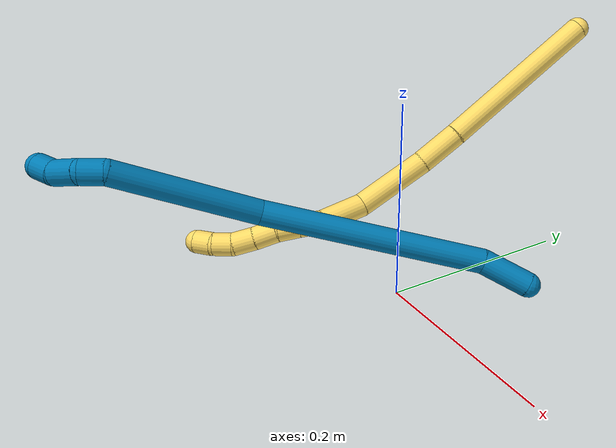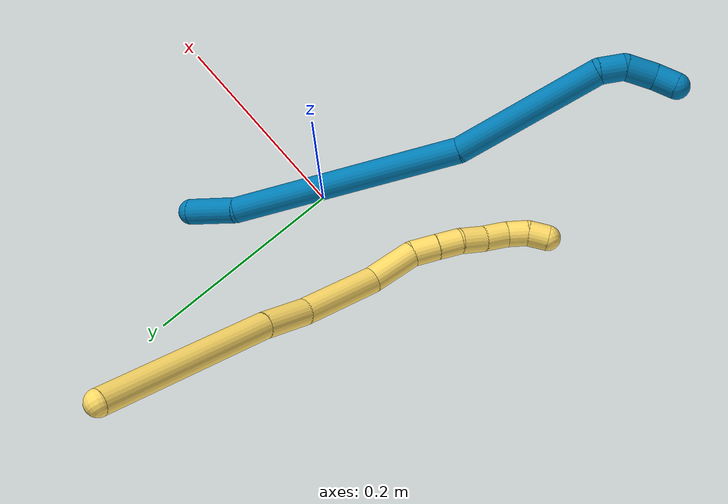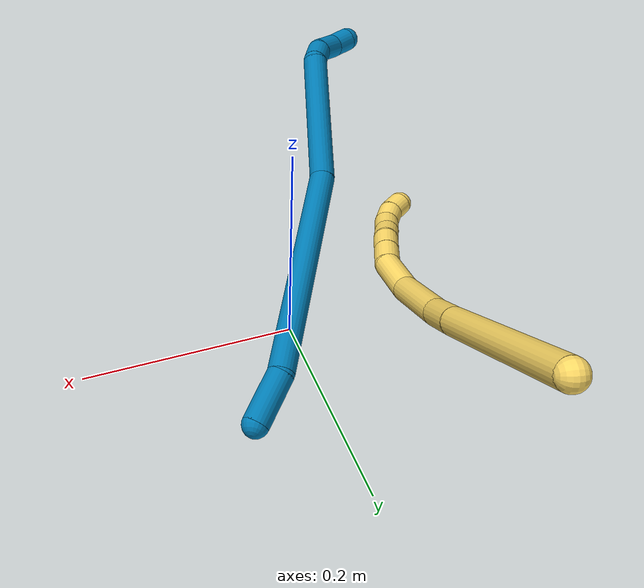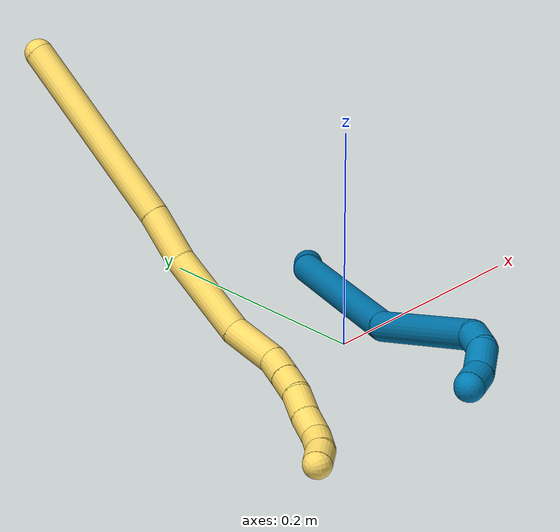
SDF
<sdf version="1.7">
 <world name="default">
  <model name="bin">
   <static>1</static>
   <link name="bottom">
    <collision name="collision-bottom">
     <pose>0 0 -0.01 0 -0 0</pose>
     <geometry><box><size>0.8 0.6 0.02</size></box></geometry>
     <surface>
      <friction><ode><mu>100</mu><mu2>100</mu2></ode></friction>
      <contact><collide_bitmask>65535</collide_bitmask></contact>
     </surface>
    </collision>
   </link>
   <link name="west_wall">
    <collision name="collision-west_wall">
     <pose>-0.41 0 0.1 0 -0 0</pose>
     <geometry><box><size>0.02 0.6 0.2</size></box></geometry>
     <surface>
      <friction><ode><mu>100</mu><mu2>100</mu2></ode></friction>
      <contact><collide_bitmask>65535</collide_bitmask></contact>
     </surface>
    </collision>
   </link>
   <link name="east_wall">
    <collision name="collision-east_wall">
     <pose>0.41 0 0.1 0 -0 0</pose>
     <geometry><box><size>0.02 0.6 0.2</size></box></geometry>
     <surface>
      <friction><ode><mu>100</mu><mu2>100</mu2></ode></friction>
      <contact><collide_bitmask>65535</collide_bitmask></contact>
     </surface>
    </collision>
   </link>
   <link name="south_wall">
    <collision name="collision-south_wall">
     <pose>0 -0.31 0.1 0 -0 0</pose>
     <geometry><box><size>0.8 0.02 0.2</size></box></geometry>
     <surface>
      <friction><ode><mu>100</mu><mu2>100</mu2></ode></friction>
      <contact><collide_bitmask>65535</collide_bitmask></contact>
     </surface>
    </collision>
   </link>
   <link name="north_wall">
    <collision name="collision-north_wall">
     <pose>0 0.31 0.1 0 -0 0</pose>
     <geometry><box><size>0.8 0.02 0.2</size></box></geometry>
     <surface>
      <friction><ode><mu>100</mu><mu2>100</mu2></ode></friction>
      <contact><collide_bitmask>65535</collide_bitmask></contact>
     </surface>
    </collision>
   </link>
  </model>
  <model name="5">
   <static>0</static>
   <link name="5">
    <collision name="collision-cylinder-e_1_1_4">
     <pose>0.01465 -0.089816 0.007468 1.48784 0.16114 0.148347</pose>
     <geometry><cylinder><radius>0.0125</radius><length>0.182617</length></cylinder></geometry>
     <surface>
      <friction><ode><mu>1.16</mu><mu2>1.16</mu2><slip1>0</slip1><slip2>0</slip2></ode></friction>
      <contact><ode><kp>1e+06</kp><kd>1</kd><max_vel>0</max_vel><min_depth>0.001</min_depth></ode></contact>
     </surface>
    </collision>
    <visual name="visual-cylinder-e_1_1_4">
     <pose>0.01465 -0.089816 0.007468 1.48784 0.16114 0.148347</pose>
     <geometry><cylinder><radius>0.0125</radius><length>0.182617</length></cylinder></geometry>
     <material><ambient>1 0.858824 0.4 1</ambient></material>
    </visual>
    <collision name="collision-cylinder-e_2_4_5">
     <pose>0.033686 -0.203258 0.014895 1.57252 0.18354 0.183854</pose>
     <geometry><cylinder><radius>0.0125</radius><length>0.048061</length></cylinder></geometry>
     <surface>
      <friction><ode><mu>1.16</mu><mu2>1.16</mu2><slip1>0</slip1><slip2>0</slip2></ode></friction>
      <contact><ode><kp>1e+06</kp><kd>1</kd><max_vel>0</max_vel><min_depth>0.001</min_depth></ode></contact>
     </surface>
    </collision>
    <visual name="visual-cylinder-e_2_4_5">
     <pose>0.033686 -0.203258 0.014895 1.57252 0.18354 0.183854</pose>
     <geometry><cylinder><radius>0.0125</radius><length>0.048061</length></cylinder></geometry>
     <material><ambient>1 0.858824 0.4 1</ambient></material>
    </visual>
    <collision name="collision-cylinder-e_3_5_6">
     <pose>0.040466 -0.267543 0.017334 1.50989 0.058729 0.055259</pose>
     <geometry><cylinder><radius>0.0125</radius><length>0.081607</length></cylinder></geometry>
     <surface>
      <friction><ode><mu>1.16</mu><mu2>1.16</mu2><slip1>0</slip1><slip2>0</slip2></ode></friction>
      <contact><ode><kp>1e+06</kp><kd>1</kd><max_vel>0</max_vel><min_depth>0.001</min_depth></ode></contact>
     </surface>
    </collision>
    <visual name="visual-cylinder-e_3_5_6">
     <pose>0.040466 -0.267543 0.017334 1.50989 0.058729 0.055259</pose>
     <geometry><cylinder><radius>0.0125</radius><length>0.081607</length></cylinder></geometry>
     <material><ambient>1 0.858824 0.4 1</ambient></material>
    </visual>
    <collision name="collision-cylinder-e_4_6_7">
     <pose>0.037486 -0.331367 0.022909 1.43796 -0.226055 -0.198055</pose>
     <geometry><cylinder><radius>0.0125</radius><length>0.047964</length></cylinder></geometry>
     <surface>
      <friction><ode><mu>1.16</mu><mu2>1.16</mu2><slip1>0</slip1><slip2>0</slip2></ode></friction>
      <contact><ode><kp>1e+06</kp><kd>1</kd><max_vel>0</max_vel><min_depth>0.001</min_depth></ode></contact>
     </surface>
    </collision>
    <visual name="visual-cylinder-e_4_6_7">
     <pose>0.037486 -0.331367 0.022909 1.43796 -0.226055 -0.198055</pose>
     <geometry><cylinder><radius>0.0125</radius><length>0.047964</length></cylinder></geometry>
     <material><ambient>1 0.858824 0.4 1</ambient></material>
    </visual>
    <collision name="collision-cylinder-e_5_7_8">
     <pose>0.028463 -0.366654 0.023465 1.77727 -0.286437 -0.351417</pose>
     <geometry><cylinder><radius>0.0125</radius><length>0.02582</length></cylinder></geometry>
     <surface>
      <friction><ode><mu>1.16</mu><mu2>1.16</mu2><slip1>0</slip1><slip2>0</slip2></ode></friction>
      <contact><ode><kp>1e+06</kp><kd>1</kd><max_vel>0</max_vel><min_depth>0.001</min_depth></ode></contact>
     </surface>
    </collision>
    <visual name="visual-cylinder-e_5_7_8">
     <pose>0.028463 -0.366654 0.023465 1.77727 -0.286437 -0.351417</pose>
     <geometry><cylinder><radius>0.0125</radius><length>0.02582</length></cylinder></geometry>
     <material><ambient>1 0.858824 0.4 1</ambient></material>
    </visual>
    <collision name="collision-cylinder-e_6_8_9">
     <pose>0.021839 -0.389876 0.018534 1.7831 -0.256353 -0.316576</pose>
     <geometry><cylinder><radius>0.0125</radius><length>0.02348</length></cylinder></geometry>
     <surface>
      <friction><ode><mu>1.16</mu><mu2>1.16</mu2><slip1>0</slip1><slip2>0</slip2></ode></friction>
      <contact><ode><kp>1e+06</kp><kd>1</kd><max_vel>0</max_vel><min_depth>0.001</min_depth></ode></contact>
     </surface>
    </collision>
    <visual name="visual-cylinder-e_6_8_9">
     <pose>0.021839 -0.389876 0.018534 1.7831 -0.256353 -0.316576</pose>
     <geometry><cylinder><radius>0.0125</radius><length>0.02348</length></cylinder></geometry>
     <material><ambient>1 0.858824 0.4 1</ambient></material>
    </visual>
    <collision name="collision-cylinder-e_7_9_10">
     <pose>0.018237 -0.413039 0.01264 1.85327 -0.049775 -0.066266</pose>
     <geometry><cylinder><radius>0.0125</radius><length>0.02515</length></cylinder></geometry>
     <surface>
      <friction><ode><mu>1.16</mu><mu2>1.16</mu2><slip1>0</slip1><slip2>0</slip2></ode></friction>
      <contact><ode><kp>1e+06</kp><kd>1</kd><max_vel>0</max_vel><min_depth>0.001</min_depth></ode></contact>
     </surface>
    </collision>
    <visual name="visual-cylinder-e_7_9_10">
     <pose>0.018237 -0.413039 0.01264 1.85327 -0.049775 -0.066266</pose>
     <geometry><cylinder><radius>0.0125</radius><length>0.02515</length></cylinder></geometry>
     <material><ambient>1 0.858824 0.4 1</ambient></material>
    </visual>
    <collision name="collision-cylinder-e_8_10_11">
     <pose>0.015644 -0.436715 0.006358 1.80586 -0.163249 -0.206683</pose>
     <geometry><cylinder><radius>0.0125</radius><length>0.024209</length></cylinder></geometry>
     <surface>
      <friction><ode><mu>1.16</mu><mu2>1.16</mu2><slip1>0</slip1><slip2>0</slip2></ode></friction>
      <contact><ode><kp>1e+06</kp><kd>1</kd><max_vel>0</max_vel><min_depth>0.001</min_depth></ode></contact>
     </surface>
    </collision>
    <visual name="visual-cylinder-e_8_10_11">
     <pose>0.015644 -0.436715 0.006358 1.80586 -0.163249 -0.206683</pose>
     <geometry><cylinder><radius>0.0125</radius><length>0.024209</length></cylinder></geometry>
     <material><ambient>1 0.858824 0.4 1</ambient></material>
    </visual>
    <collision name="collision-cylinder-e_9_11_12">
     <pose>0.010069 -0.457112 -0.000892 2.04144 -0.350998 -0.562986</pose>
     <geometry><cylinder><radius>0.0125</radius><length>0.020986</length></cylinder></geometry>
     <surface>
      <friction><ode><mu>1.16</mu><mu2>1.16</mu2><slip1>0</slip1><slip2>0</slip2></ode></friction>
      <contact><ode><kp>1e+06</kp><kd>1</kd><max_vel>0</max_vel><min_depth>0.001</min_depth></ode></contact>
     </surface>
    </collision>
    <visual name="visual-cylinder-e_9_11_12">
     <pose>0.010069 -0.457112 -0.000892 2.04144 -0.350998 -0.562986</pose>
     <geometry><cylinder><radius>0.0125</radius><length>0.020986</length></cylinder></geometry>
     <material><ambient>1 0.858824 0.4 1</ambient></material>
    </visual>
    <collision name="collision-cylinder-e_10_12_2">
     <pose>0.003822 -0.472792 -0.012181 2.35056 -0.265579 -0.619274</pose>
     <geometry><cylinder><radius>0.0125</radius><length>0.020106</length></cylinder></geometry>
     <surface>
      <friction><ode><mu>1.16</mu><mu2>1.16</mu2><slip1>0</slip1><slip2>0</slip2></ode></friction>
      <contact><ode><kp>1e+06</kp><kd>1</kd><max_vel>0</max_vel><min_depth>0.001</min_depth></ode></contact>
     </surface>
    </collision>
    <visual name="visual-cylinder-e_10_12_2">
     <pose>0.003822 -0.472792 -0.012181 2.35056 -0.265579 -0.619274</pose>
     <geometry><cylinder><radius>0.0125</radius><length>0.020106</length></cylinder></geometry>
     <material><ambient>1 0.858824 0.4 1</ambient></material>
    </visual>
    <collision name="collision-sphere-2">
     <pose>0.001184 -0.47969 -0.019001 0 -0 0</pose>
     <geometry><sphere><radius>0.0125</radius></sphere></geometry>
     <surface>
      <friction><ode><mu>1.16</mu><mu2>1.16</mu2><slip1>0</slip1><slip2>0</slip2></ode></friction>
      <contact><ode><kp>1e+06</kp><kd>1</kd><max_vel>0</max_vel><min_depth>0.001</min_depth></ode></contact>
     </surface>
    </collision>
    <visual name="visual-sphere-2">
     <pose>0.001184 -0.47969 -0.019001 0 -0 0</pose>
     <geometry><sphere><radius>0.0125</radius></sphere></geometry>
     <material><ambient>1 0.858824 0.4 1</ambient></material>
    </visual>
    <collision name="collision-sphere-12">
     <pose>0.006461 -0.465894 -0.00536 0 -0 0</pose>
     <geometry><sphere><radius>0.0125</radius></sphere></geometry>
     <surface>
      <friction><ode><mu>1.16</mu><mu2>1.16</mu2><slip1>0</slip1><slip2>0</slip2></ode></friction>
      <contact><ode><kp>1e+06</kp><kd>1</kd><max_vel>0</max_vel><min_depth>0.001</min_depth></ode></contact>
     </surface>
    </collision>
    <visual name="visual-sphere-12">
     <pose>0.006461 -0.465894 -0.00536 0 -0 0</pose>
     <geometry><sphere><radius>0.0125</radius></sphere></geometry>
     <material><ambient>1 0.858824 0.4 1</ambient></material>
    </visual>
    <collision name="collision-sphere-11">
     <pose>0.013677 -0.44833 0.003576 0 -0 0</pose>
     <geometry><sphere><radius>0.0125</radius></sphere></geometry>
     <surface>
      <friction><ode><mu>1.16</mu><mu2>1.16</mu2><slip1>0</slip1><slip2>0</slip2></ode></friction>
      <contact><ode><kp>1e+06</kp><kd>1</kd><max_vel>0</max_vel><min_depth>0.001</min_depth></ode></contact>
     </surface>
    </collision>
    <visual name="visual-sphere-11">
     <pose>0.013677 -0.44833 0.003576 0 -0 0</pose>
     <geometry><sphere><radius>0.0125</radius></sphere></geometry>
     <material><ambient>1 0.858824 0.4 1</ambient></material>
    </visual>
    <collision name="collision-sphere-10">
     <pose>0.017611 -0.425101 0.009139 0 -0 0</pose>
     <geometry><sphere><radius>0.0125</radius></sphere></geometry>
     <surface>
      <friction><ode><mu>1.16</mu><mu2>1.16</mu2><slip1>0</slip1><slip2>0</slip2></ode></friction>
      <contact><ode><kp>1e+06</kp><kd>1</kd><max_vel>0</max_vel><min_depth>0.001</min_depth></ode></contact>
     </surface>
    </collision>
    <visual name="visual-sphere-10">
     <pose>0.017611 -0.425101 0.009139 0 -0 0</pose>
     <geometry><sphere><radius>0.0125</radius></sphere></geometry>
     <material><ambient>1 0.858824 0.4 1</ambient></material>
    </visual>
    <collision name="collision-sphere-9">
     <pose>0.018862 -0.400977 0.016141 0 -0 0</pose>
     <geometry><sphere><radius>0.0125</radius></sphere></geometry>
     <surface>
      <friction><ode><mu>1.16</mu><mu2>1.16</mu2><slip1>0</slip1><slip2>0</slip2></ode></friction>
      <contact><ode><kp>1e+06</kp><kd>1</kd><max_vel>0</max_vel><min_depth>0.001</min_depth></ode></contact>
     </surface>
    </collision>
    <visual name="visual-sphere-9">
     <pose>0.018862 -0.400977 0.016141 0 -0 0</pose>
     <geometry><sphere><radius>0.0125</radius></sphere></geometry>
     <material><ambient>1 0.858824 0.4 1</ambient></material>
    </visual>
    <collision name="collision-sphere-4">
     <pose>0.0293 -0.179631 0.014936 0 -0 0</pose>
     <geometry><sphere><radius>0.0125</radius></sphere></geometry>
     <surface>
      <friction><ode><mu>1.16</mu><mu2>1.16</mu2><slip1>0</slip1><slip2>0</slip2></ode></friction>
      <contact><ode><kp>1e+06</kp><kd>1</kd><max_vel>0</max_vel><min_depth>0.001</min_depth></ode></contact>
     </surface>
    </collision>
    <visual name="visual-sphere-4">
     <pose>0.0293 -0.179631 0.014936 0 -0 0</pose>
     <geometry><sphere><radius>0.0125</radius></sphere></geometry>
     <material><ambient>1 0.858824 0.4 1</ambient></material>
    </visual>
    <collision name="collision-sphere-1">
     <geometry><sphere><radius>0.0125</radius></sphere></geometry>
     <surface>
      <friction><ode><mu>1.16</mu><mu2>1.16</mu2><slip1>0</slip1><slip2>0</slip2></ode></friction>
      <contact><ode><kp>1e+06</kp><kd>1</kd><max_vel>0</max_vel><min_depth>0.001</min_depth></ode></contact>
     </surface>
    </collision>
    <visual name="visual-sphere-1">
     <geometry><sphere><radius>0.0125</radius></sphere></geometry>
     <material><ambient>1 0.858824 0.4 1</ambient></material>
    </visual>
    <collision name="collision-sphere-8">
     <pose>0.024816 -0.378775 0.020926 0 -0 0</pose>
     <geometry><sphere><radius>0.0125</radius></sphere></geometry>
     <surface>
      <friction><ode><mu>1.16</mu><mu2>1.16</mu2><slip1>0</slip1><slip2>0</slip2></ode></friction>
      <contact><ode><kp>1e+06</kp><kd>1</kd><max_vel>0</max_vel><min_depth>0.001</min_depth></ode></contact>
     </surface>
    </collision>
    <visual name="visual-sphere-8">
     <pose>0.024816 -0.378775 0.020926 0 -0 0</pose>
     <geometry><sphere><radius>0.0125</radius></sphere></geometry>
     <material><ambient>1 0.858824 0.4 1</ambient></material>
    </visual>
    <collision name="collision-sphere-5">
     <pose>0.038071 -0.226885 0.014855 0 -0 0</pose>
     <geometry><sphere><radius>0.0125</radius></sphere></geometry>
     <surface>
      <friction><ode><mu>1.16</mu><mu2>1.16</mu2><slip1>0</slip1><slip2>0</slip2></ode></friction>
      <contact><ode><kp>1e+06</kp><kd>1</kd><max_vel>0</max_vel><min_depth>0.001</min_depth></ode></contact>
     </surface>
    </collision>
    <visual name="visual-sphere-5">
     <pose>0.038071 -0.226885 0.014855 0 -0 0</pose>
     <geometry><sphere><radius>0.0125</radius></sphere></geometry>
     <material><ambient>1 0.858824 0.4 1</ambient></material>
    </visual>
    <collision name="collision-sphere-6">
     <pose>0.042861 -0.3082 0.019813 0 -0 0</pose>
     <geometry><sphere><radius>0.0125</radius></sphere></geometry>
     <surface>
      <friction><ode><mu>1.16</mu><mu2>1.16</mu2><slip1>0</slip1><slip2>0</slip2></ode></friction>
      <contact><ode><kp>1e+06</kp><kd>1</kd><max_vel>0</max_vel><min_depth>0.001</min_depth></ode></contact>
     </surface>
    </collision>
    <visual name="visual-sphere-6">
     <pose>0.042861 -0.3082 0.019813 0 -0 0</pose>
     <geometry><sphere><radius>0.0125</radius></sphere></geometry>
     <material><ambient>1 0.858824 0.4 1</ambient></material>
    </visual>
    <collision name="collision-sphere-7">
     <pose>0.032111 -0.354533 0.026004 0 -0 0</pose>
     <geometry><sphere><radius>0.0125</radius></sphere></geometry>
     <surface>
      <friction><ode><mu>1.16</mu><mu2>1.16</mu2><slip1>0</slip1><slip2>0</slip2></ode></friction>
      <contact><ode><kp>1e+06</kp><kd>1</kd><max_vel>0</max_vel><min_depth>0.001</min_depth></ode></contact>
     </surface>
    </collision>
    <visual name="visual-sphere-7">
     <pose>0.032111 -0.354533 0.026004 0 -0 0</pose>
     <geometry><sphere><radius>0.0125</radius></sphere></geometry>
     <material><ambient>1 0.858824 0.4 1</ambient></material>
    </visual>
    <inertial>
     <pose>0.023536 -0.245156 0.011684 0 -0 0</pose>
     <mass>0.5</mass>
     <inertia>
      <ixx>0.000657</ixx>
      <ixy>0</ixy>
      <ixz>0</ixz>
      <iyy>9.4e-05</iyy>
      <iyz>0</iyz>
      <izz>0.000503</izz>
     </inertia>
    </inertial>
   </link>
   <pose>-0.078487 0.290875 0.206991 1.48806 1.15587 1.29722</pose>
  </model>
  <model name="9">
   <static>0</static>
   <link name="9">
    <collision name="collision-cylinder-e_1_1_4">
     <pose>0.005251 0.003628 0.024157 -0.149067 0.211746 -0.01587</pose>
     <geometry><cylinder><radius>0.0125</radius><length>0.049971</length></cylinder></geometry>
     <surface>
      <friction><ode><mu>1.16</mu><mu2>1.16</mu2><slip1>0</slip1><slip2>0</slip2></ode></friction>
      <contact><ode><kp>1e+06</kp><kd>1</kd><max_vel>0</max_vel><min_depth>0.001</min_depth></ode></contact>
     </surface>
    </collision>
    <visual name="visual-cylinder-e_1_1_4">
     <pose>0.005251 0.003628 0.024157 -0.149067 0.211746 -0.01587</pose>
     <geometry><cylinder><radius>0.0125</radius><length>0.049971</length></cylinder></geometry>
     <material><ambient>0 0.490196 0.709804 1</ambient></material>
    </visual>
    <collision name="collision-cylinder-e_2_4_5">
     <pose>0.005868 0.002665 0.160765 0.040797 -0.041154 -0.00084</pose>
     <geometry><cylinder><radius>0.0125</radius><length>0.225281</length></cylinder></geometry>
     <surface>
      <friction><ode><mu>1.16</mu><mu2>1.16</mu2><slip1>0</slip1><slip2>0</slip2></ode></friction>
      <contact><ode><kp>1e+06</kp><kd>1</kd><max_vel>0</max_vel><min_depth>0.001</min_depth></ode></contact>
     </surface>
    </collision>
    <visual name="visual-cylinder-e_2_4_5">
     <pose>0.005868 0.002665 0.160765 0.040797 -0.041154 -0.00084</pose>
     <geometry><cylinder><radius>0.0125</radius><length>0.225281</length></cylinder></geometry>
     <material><ambient>0 0.490196 0.709804 1</ambient></material>
    </visual>
    <collision name="collision-cylinder-e_3_5_6">
     <pose>0.002549 -0.023379 0.344683 0.291643 0.017629 0.002589</pose>
     <geometry><cylinder><radius>0.0125</radius><length>0.149258</length></cylinder></geometry>
     <surface>
      <friction><ode><mu>1.16</mu><mu2>1.16</mu2><slip1>0</slip1><slip2>0</slip2></ode></friction>
      <contact><ode><kp>1e+06</kp><kd>1</kd><max_vel>0</max_vel><min_depth>0.001</min_depth></ode></contact>
     </surface>
    </collision>
    <visual name="visual-cylinder-e_3_5_6">
     <pose>0.002549 -0.023379 0.344683 0.291643 0.017629 0.002589</pose>
     <geometry><cylinder><radius>0.0125</radius><length>0.149258</length></cylinder></geometry>
     <material><ambient>0 0.490196 0.709804 1</ambient></material>
    </visual>
    <collision name="collision-cylinder-e_4_6_7">
     <pose>0.000834 -0.044043 0.427839 -0.067553 -0.253122 0.008599</pose>
     <geometry><cylinder><radius>0.0125</radius><length>0.024203</length></cylinder></geometry>
     <surface>
      <friction><ode><mu>1.16</mu><mu2>1.16</mu2><slip1>0</slip1><slip2>0</slip2></ode></friction>
      <contact><ode><kp>1e+06</kp><kd>1</kd><max_vel>0</max_vel><min_depth>0.001</min_depth></ode></contact>
     </surface>
    </collision>
    <visual name="visual-cylinder-e_4_6_7">
     <pose>0.000834 -0.044043 0.427839 -0.067553 -0.253122 0.008599</pose>
     <geometry><cylinder><radius>0.0125</radius><length>0.024203</length></cylinder></geometry>
     <material><ambient>0 0.490196 0.709804 1</ambient></material>
    </visual>
    <collision name="collision-cylinder-e_5_7_8">
     <pose>-0.006208 -0.035771 0.451491 -0.558854 -0.277008 0.079953</pose>
     <geometry><cylinder><radius>0.0125</radius><length>0.029337</length></cylinder></geometry>
     <surface>
      <friction><ode><mu>1.16</mu><mu2>1.16</mu2><slip1>0</slip1><slip2>0</slip2></ode></friction>
      <contact><ode><kp>1e+06</kp><kd>1</kd><max_vel>0</max_vel><min_depth>0.001</min_depth></ode></contact>
     </surface>
    </collision>
    <visual name="visual-cylinder-e_5_7_8">
     <pose>-0.006208 -0.035771 0.451491 -0.558854 -0.277008 0.079953</pose>
     <geometry><cylinder><radius>0.0125</radius><length>0.029337</length></cylinder></geometry>
     <material><ambient>0 0.490196 0.709804 1</ambient></material>
    </visual>
    <collision name="collision-cylinder-e_6_8_2">
     <pose>-0.009718 -0.021863 0.472336 -0.626359 0.045683 -0.014796</pose>
     <geometry><cylinder><radius>0.0125</radius><length>0.021949</length></cylinder></geometry>
     <surface>
      <friction><ode><mu>1.16</mu><mu2>1.16</mu2><slip1>0</slip1><slip2>0</slip2></ode></friction>
      <contact><ode><kp>1e+06</kp><kd>1</kd><max_vel>0</max_vel><min_depth>0.001</min_depth></ode></contact>
     </surface>
    </collision>
    <visual name="visual-cylinder-e_6_8_2">
     <pose>-0.009718 -0.021863 0.472336 -0.626359 0.045683 -0.014796</pose>
     <geometry><cylinder><radius>0.0125</radius><length>0.021949</length></cylinder></geometry>
     <material><ambient>0 0.490196 0.709804 1</ambient></material>
    </visual>
    <collision name="collision-sphere-2">
     <pose>-0.009217 -0.015437 0.481218 0 -0 0</pose>
     <geometry><sphere><radius>0.0125</radius></sphere></geometry>
     <surface>
      <friction><ode><mu>1.16</mu><mu2>1.16</mu2><slip1>0</slip1><slip2>0</slip2></ode></friction>
      <contact><ode><kp>1e+06</kp><kd>1</kd><max_vel>0</max_vel><min_depth>0.001</min_depth></ode></contact>
     </surface>
    </collision>
    <visual name="visual-sphere-2">
     <pose>-0.009217 -0.015437 0.481218 0 -0 0</pose>
     <geometry><sphere><radius>0.0125</radius></sphere></geometry>
     <material><ambient>0 0.490196 0.709804 1</ambient></material>
    </visual>
    <collision name="collision-sphere-4">
     <pose>0.010502 0.007256 0.048313 0 -0 0</pose>
     <geometry><sphere><radius>0.0125</radius></sphere></geometry>
     <surface>
      <friction><ode><mu>1.16</mu><mu2>1.16</mu2><slip1>0</slip1><slip2>0</slip2></ode></friction>
      <contact><ode><kp>1e+06</kp><kd>1</kd><max_vel>0</max_vel><min_depth>0.001</min_depth></ode></contact>
     </surface>
    </collision>
    <visual name="visual-sphere-4">
     <pose>0.010502 0.007256 0.048313 0 -0 0</pose>
     <geometry><sphere><radius>0.0125</radius></sphere></geometry>
     <material><ambient>0 0.490196 0.709804 1</ambient></material>
    </visual>
    <collision name="collision-sphere-1">
     <geometry><sphere><radius>0.0125</radius></sphere></geometry>
     <surface>
      <friction><ode><mu>1.16</mu><mu2>1.16</mu2><slip1>0</slip1><slip2>0</slip2></ode></friction>
      <contact><ode><kp>1e+06</kp><kd>1</kd><max_vel>0</max_vel><min_depth>0.001</min_depth></ode></contact>
     </surface>
    </collision>
    <visual name="visual-sphere-1">
     <geometry><sphere><radius>0.0125</radius></sphere></geometry>
     <material><ambient>0 0.490196 0.709804 1</ambient></material>
    </visual>
    <collision name="collision-sphere-8">
     <pose>-0.010219 -0.02829 0.463454 0 -0 0</pose>
     <geometry><sphere><radius>0.0125</radius></sphere></geometry>
     <surface>
      <friction><ode><mu>1.16</mu><mu2>1.16</mu2><slip1>0</slip1><slip2>0</slip2></ode></friction>
      <contact><ode><kp>1e+06</kp><kd>1</kd><max_vel>0</max_vel><min_depth>0.001</min_depth></ode></contact>
     </surface>
    </collision>
    <visual name="visual-sphere-8">
     <pose>-0.010219 -0.02829 0.463454 0 -0 0</pose>
     <geometry><sphere><radius>0.0125</radius></sphere></geometry>
     <material><ambient>0 0.490196 0.709804 1</ambient></material>
    </visual>
    <collision name="collision-sphere-5">
     <pose>0.001234 -0.001925 0.273216 0 -0 0</pose>
     <geometry><sphere><radius>0.0125</radius></sphere></geometry>
     <surface>
      <friction><ode><mu>1.16</mu><mu2>1.16</mu2><slip1>0</slip1><slip2>0</slip2></ode></friction>
      <contact><ode><kp>1e+06</kp><kd>1</kd><max_vel>0</max_vel><min_depth>0.001</min_depth></ode></contact>
     </surface>
    </collision>
    <visual name="visual-sphere-5">
     <pose>0.001234 -0.001925 0.273216 0 -0 0</pose>
     <geometry><sphere><radius>0.0125</radius></sphere></geometry>
     <material><ambient>0 0.490196 0.709804 1</ambient></material>
    </visual>
    <collision name="collision-sphere-6">
     <pose>0.003865 -0.044834 0.41615 0 -0 0</pose>
     <geometry><sphere><radius>0.0125</radius></sphere></geometry>
     <surface>
      <friction><ode><mu>1.16</mu><mu2>1.16</mu2><slip1>0</slip1><slip2>0</slip2></ode></friction>
      <contact><ode><kp>1e+06</kp><kd>1</kd><max_vel>0</max_vel><min_depth>0.001</min_depth></ode></contact>
     </surface>
    </collision>
    <visual name="visual-sphere-6">
     <pose>0.003865 -0.044834 0.41615 0 -0 0</pose>
     <geometry><sphere><radius>0.0125</radius></sphere></geometry>
     <material><ambient>0 0.490196 0.709804 1</ambient></material>
    </visual>
    <collision name="collision-sphere-7">
     <pose>-0.002196 -0.043252 0.439528 0 -0 0</pose>
     <geometry><sphere><radius>0.0125</radius></sphere></geometry>
     <surface>
      <friction><ode><mu>1.16</mu><mu2>1.16</mu2><slip1>0</slip1><slip2>0</slip2></ode></friction>
      <contact><ode><kp>1e+06</kp><kd>1</kd><max_vel>0</max_vel><min_depth>0.001</min_depth></ode></contact>
     </surface>
    </collision>
    <visual name="visual-sphere-7">
     <pose>-0.002196 -0.043252 0.439528 0 -0 0</pose>
     <geometry><sphere><radius>0.0125</radius></sphere></geometry>
     <material><ambient>0 0.490196 0.709804 1</ambient></material>
    </visual>
    <inertial>
     <pose>0.003179 -0.010606 0.245678 0 -0 0</pose>
     <mass>0.5</mass>
     <inertia>
      <ixx>0.001262</ixx>
      <ixy>0</ixy>
      <ixz>0</ixz>
      <iyy>0.001249</iyy>
      <iyz>0</iyz>
      <izz>0.000187</izz>
     </inertia>
    </inertial>
   </link>
   <pose>0.069715 0.109229 0.011458 -0.961759 -1.07323 2.0128</pose>
  </model>
 </world>
</sdf>
